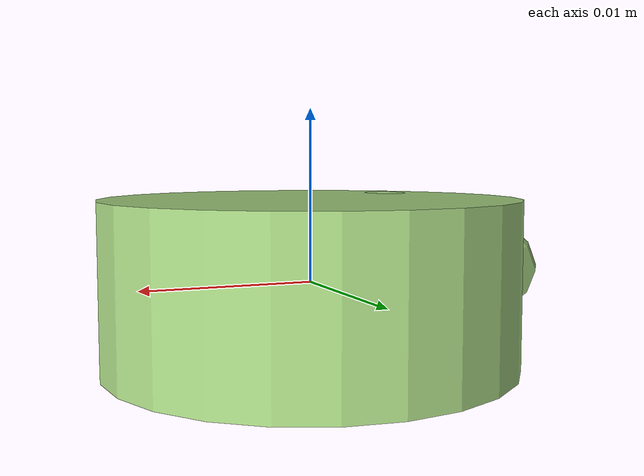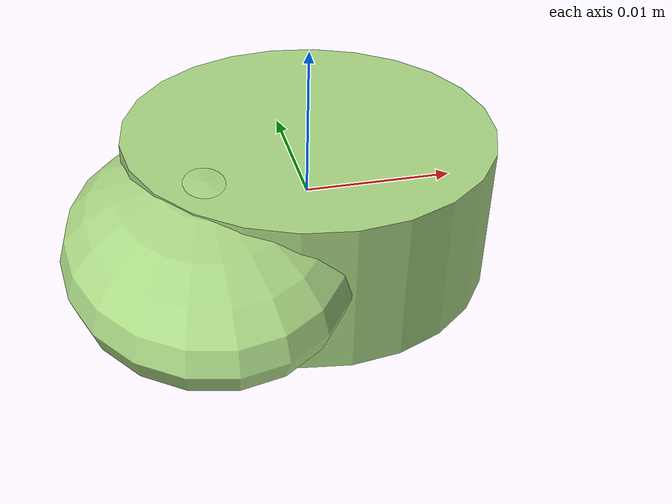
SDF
<?xml version="1.0" ?>
<!-- |    This document was autogenerated by xmacro from data/veggie_template/veggie_base.sdf.xacro  | -->
<!-- |    EDITING THIS FILE BY HAND IS NOT RECOMMENDED                                               | -->
<sdf version="1.8">
	<!-- Parameters -->
	<!-- Base -->
	<!-- Joint 0 -->
	<!-- Link 1 -->
	<!-- Joint 1 -->
	<!-- Link 2 -->
	<!-- Primitives -->
	<!-- All dimensions are half -->
	<!-- Object -->
	<model name="veggie">
		<!-- link0 -->
		<link name="link0">
			<inertial>
				<mass>0.004462065413582724</mass>
				<inertia>
					<ixx>1.9814871509230995e-07</ixx>
					<ixy>0</ixy>
					<ixz>0</ixz>
					<iyy>1.9814871509230995e-07</iyy>
					<iyz>0</iyz>
					<izz>3.2605915223681955e-07</izz>
				</inertia>
			</inertial>
			<visual name="link0_visual">
				<pose>0 0 0 0 0 0</pose>
				<geometry>
					<cylinder>
						<radius>0.012089135044283071</radius>
						<length>0.009718395888028687</length>
					</cylinder>
				</geometry>
				<material>
					<ambient>0.659 0.839 0.514 1</ambient>
					<diffuse>0.659 0.839 0.514 1</diffuse>
					<specular>0 0 0 0</specular>
					<emissive>0 0 0 1</emissive>
				</material>
			</visual>
			<collision name="link0_collision">
				<pose>0 0 0 0 0 0 </pose>
				<geometry>
					<cylinder>
						<radius>0.012089135044283071</radius>
						<length>0.009718395888028687</length>
					</cylinder>
				</geometry>
			</collision>
		</link>
		<!-- link1 -->
		<joint name="joint0" type="fixed">
			<pose relative_to="link0">-0.007503039338685703 -0.005465761150114138 0.0005187326531399358 0.0 0.0 0.0</pose>
			<parent>link0</parent>
			<child>link1</child>
		</joint>
		<link name="link1">
			<pose relative_to="joint0">0 0 0 0 0 0</pose>
			<inertial>
				<mass>0.0019576268126713183</mass>
				<inertia>
					<ixx>6.360868780380833e-08</ixx>
					<ixy>0</ixy>
					<ixz>0</ixz>
					<iyy>3.8088779881041985e-08</iyy>
					<iyz>0</iyz>
					<izz>8.624624454588228e-08</izz>
				</inertia>
			</inertial>
			<visual name="link1_visual">
				<pose>0 0 0 0 0 0</pose>
				<geometry>
					<ellipsoid>
						<radii>0.008806302373199825 0.011947036824299198 0.004442081109333451</radii>
					</ellipsoid>
				</geometry>
				<material>
					<ambient>0.659 0.839 0.514 1</ambient>
					<diffuse>0.659 0.839 0.514 1</diffuse>
					<specular>0 0 0 0</specular>
					<emissive>0 0 0 1</emissive>
				</material>
			</visual>
			<collision name="link1_collision">
				<pose>0 0 0 0 0 0 </pose>
				<geometry>
					<ellipsoid>
						<radii>0.008806302373199825 0.011947036824299198 0.004442081109333451</radii>
					</ellipsoid>
				</geometry>
			</collision>
		</link>
		<!-- link2 -->
	</model>
</sdf>
